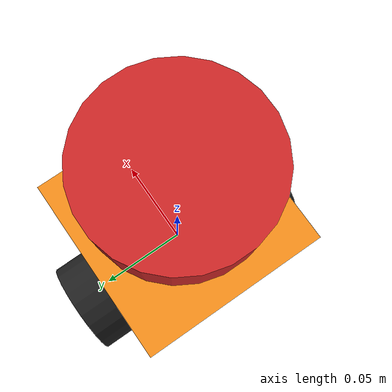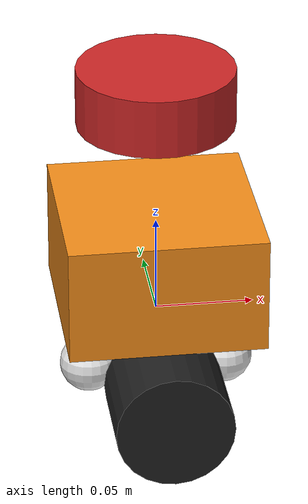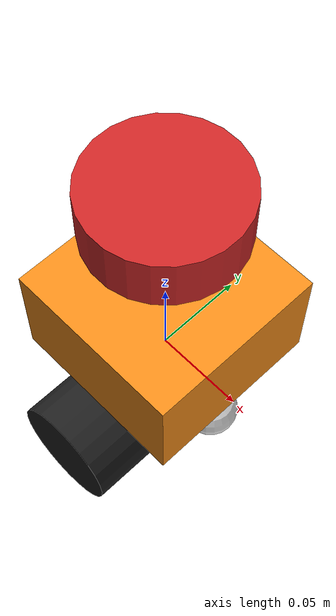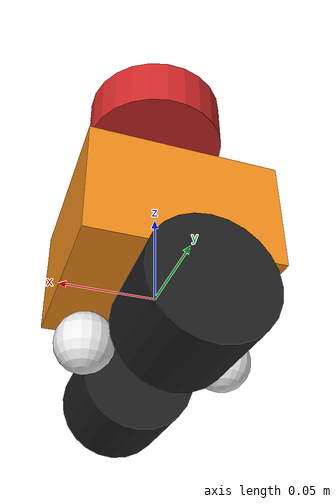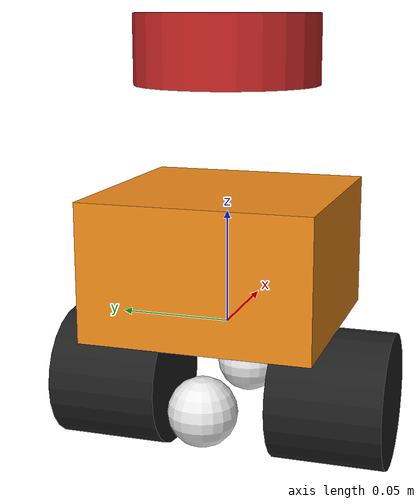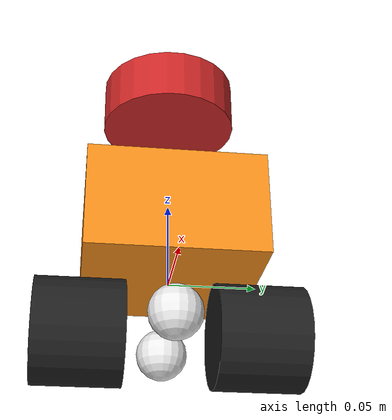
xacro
<?xml version="1.0"?>
<!-- Basic differential drive mobile base -->
<robot xmlns:xacro="http://www.ros.org/wiki/xacro" name="diffdrive_robot">
  <xacro:arg name="prefix" default="" />

  <xacro:include filename="$(find diffdrive_arduino)/urdf/diffbot_description.urdf.xacro" />

  <!-- Import Rviz colors -->
  <xacro:include filename="$(find diffdrive_arduino)/urdf/diffbot.materials.xacro" />

  <!-- Import diffbot ros2_control description -->
  <xacro:include filename="$(find diffdrive_arduino)/ros2_control/diffbot.ros2_control.xacro" />

  <xacro:diffbot prefix="$(arg prefix)" />

  <xacro:diffbot_ros2_control
    name="DiffBot" prefix="$(arg prefix)" />

  <xacro:include filename="lidar.xacro" />

</robot>

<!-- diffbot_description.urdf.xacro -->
<robot xmlns:xacro="http://www.ros.org/wiki/xacro">

  <xacro:macro name="diffbot" params="prefix">

  <!-- Constants for robot dimensions -->
  <xacro:property name="PI" value="3.1415926535897931"/>
  <xacro:property name="base_mass" value="0.3" /> <!-- arbitrary value for base mass -->
  <xacro:property name="base_width" value="0.1" /> <!--was w=.18, l=.3 -->
  <xacro:property name="base_length" value="0.1" />
  <xacro:property name="base_height" value="0.06" />
  <xacro:property name="wheel_mass" value="0.3" /> <!-- arbitrary value for wheel mass -->
  <xacro:property name="wheel_len" value="0.050" />
  <xacro:property name="wheel_radius" value="0.03" />
  <xacro:property name="caster_wheel_mass" value="0.1" /> <!-- arbitrary value for caster wheel mass -->
  <xacro:property name="caster_wheel_radius" value="0.015" />
  <xacro:property name="z_offset" value="-${base_height/2}" /> <!-- Space btw top of beam and the each joint -->

  <!-- Base Link -->
  <link name="${prefix}base_link">
    <collision>
      <origin xyz="0 0 0" rpy="0 0 0"/>
      <geometry>
        <box size="${base_width} ${base_length} ${base_height}"/>
      </geometry>
    </collision>

    <visual>
      <origin xyz="0 0 ${base_height/2}" rpy="0 0 0"/>
      <geometry>
        <box size="${base_width} ${base_length} ${base_height}"/>
      </geometry>
      <material name="orange"/>
    </visual>

    </link>

    <joint name="${prefix}left_wheel_joint" type="continuous">
      <parent link="${prefix}base_link"/>
      <child link="${prefix}left_wheel"/>
      <origin xyz="0 -${base_width/2} ${z_offset}" rpy="0 0 0"/>
      <axis xyz="0 1 0"/>
      <dynamics damping="0.2"/>
    </joint>

    <!-- BASE_FOOTPRINT LINK -->

    <joint name="base_footprint_joint" type="fixed">
      <parent link="base_link"/>
      <child link="base_footprint"/>
      <origin xyz="0 0 0" rpy="0 0 0"/>
    </joint>

    <link name="base_footprint">
    </link>

    <!-- left wheel Link -->
    <link name="${prefix}left_wheel">
      <collision>
        <origin xyz="0 0 0" rpy="${PI/2} 0 0"/>
        <geometry>
          <cylinder length="${wheel_len}" radius="${wheel_radius}"/>
        </geometry>
      </collision>

      <visual>
        <origin xyz="0 0 0" rpy="${PI/2} 0 0"/>
        <geometry>
          <cylinder length="${wheel_len}" radius="${wheel_radius}"/>
        </geometry>
        <material name="black"/>
      </visual>

      <inertial>
        <origin xyz="0 0 0" rpy="${PI/2} 0 0"/>
        <mass value="${wheel_mass}"/>
        <inertia
          ixx="${wheel_mass / 12.0 * (3*wheel_radius + wheel_len*wheel_len)}" ixy="0.0" ixz="0.0"
          iyy="${wheel_mass / 12.0 * wheel_radius*wheel_radius}" iyz="0.0"
          izz="${wheel_mass / 12.0 * wheel_radius*wheel_radius}"/>
        </inertial>
      </link>

    <joint name="${prefix}right_wheel_joint" type="continuous">
      <parent link="${prefix}base_link"/>
      <child link="${prefix}right_wheel"/>
      <origin xyz="0 ${base_width/2} ${z_offset}" rpy="0 0 0"/>
      <axis xyz="0 1 0"/>
      <dynamics damping="0.2"/>
    </joint>

    <!-- right wheel Link -->
    <link name="${prefix}right_wheel">
      <collision>
        <origin xyz="0 0 0" rpy="${PI/2} 0 0"/>
        <geometry>
          <cylinder length="${wheel_len}" radius="${wheel_radius}"/>
        </geometry>
      </collision>

      <visual>
        <origin xyz="0 0 0" rpy="${PI/2} 0 0"/>
        <geometry>
          <cylinder length="${wheel_len}" radius="${wheel_radius}"/>
        </geometry>
        <material name="black"/>
      </visual>

      <inertial>
        <origin xyz="0 0 0" rpy="${PI/2} 0 0"/>
        <mass value="${wheel_mass}"/>
        <inertia
          ixx="${wheel_mass / 12.0 * (3*wheel_radius + wheel_len*wheel_len)}" ixy="0.0" ixz="0.0"
          iyy="${wheel_mass / 12.0 * wheel_radius*wheel_radius}" iyz="0.0"
          izz="${wheel_mass / 12.0 * wheel_radius*wheel_radius}"/>
        </inertial>
      </link>

    <joint name="${prefix}caster_frontal_wheel_joint" type="fixed">
      <parent link="${prefix}base_link"/>
      <child link="${prefix}caster_frontal_wheel"/>
      <origin xyz="${base_width/2 - caster_wheel_radius} 0 ${z_offset}" rpy="0 0 0"/>
    </joint>

    <!-- caster frontal wheel Link -->
    <link name="${prefix}caster_frontal_wheel">
      <collision>
        <origin xyz="0 0 0" rpy="0 0 0"/>
        <geometry>
          <sphere radius="${caster_wheel_radius}"/>
        </geometry>
      </collision>

      <visual>
        <origin xyz="0 0 0" rpy="0 0 0"/>
        <geometry>
          <sphere radius="${caster_wheel_radius}"/>
        </geometry>
        <material name="white"/>
      </visual>

      <inertial>
        <origin xyz="0 0 0" rpy="0 0 0"/>
        <mass value="${caster_wheel_mass}"/>
        <inertia
          ixx="${caster_wheel_mass * 0.4 * (caster_wheel_radius * caster_wheel_radius)}" ixy="0.0" ixz="0.0"
          iyy="${caster_wheel_mass * 0.4 * (caster_wheel_radius * caster_wheel_radius)}" iyz="0.0"
          izz="${caster_wheel_mass * 0.4 * (caster_wheel_radius * caster_wheel_radius)}"/>
        </inertial>
      </link>

    <joint name="${prefix}caster_rear_wheel_joint" type="fixed">
      <parent link="${prefix}base_link"/>
      <child link="${prefix}caster_rear_wheel"/>
      <origin xyz="${-base_width/2 + caster_wheel_radius} 0 ${z_offset}" rpy="0 0 0"/>
    </joint>

    <!-- caster rear wheel Link -->
    <link name="${prefix}caster_rear_wheel">
      <collision>
        <origin xyz="0 0 0" rpy="0 0 0"/>
        <geometry>
          <sphere radius="${caster_wheel_radius}"/>
        </geometry>
      </collision>

      <visual>
        <origin xyz="0 0 0" rpy="0 0 0"/>
        <geometry>
          <sphere radius="${caster_wheel_radius}"/>
        </geometry>
        <material name="white"/>
      </visual>

      <inertial>
        <origin xyz="0 0 0" rpy="0 0 0"/>
        <mass value="${caster_wheel_mass}"/>
        <inertia
          ixx="${caster_wheel_mass * 0.4 * (caster_wheel_radius * caster_wheel_radius)}" ixy="0.0" ixz="0.0"
          iyy="${caster_wheel_mass * 0.4 * (caster_wheel_radius * caster_wheel_radius)}" iyz="0.0"
          izz="${caster_wheel_mass * 0.4 * (caster_wheel_radius * caster_wheel_radius)}"/>
        </inertial>
      </link>

  </xacro:macro>

</robot>

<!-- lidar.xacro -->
<robot xmlns:xacro="http://www.ros.org/wiki/xacro" >

    <joint name="laser_joint" type ="fixed">
        <parent link="base_link"/>
        <child link="laser_frame"/>
        <origin xyz="0 0 0.12" rpy="0 0 1.7" />
    </joint>

    <link name="laser_frame">
        <visual>
            <geometry>
                <cylinder radius="0.04" length="0.03" />
            </geometry>
            <material name="red"/>
        </visual>
        <collision>
            <geometry>
                <cylinder length="0.03" radius="0.04" />
            </geometry>
        </collision>

    </link>

</robot>
